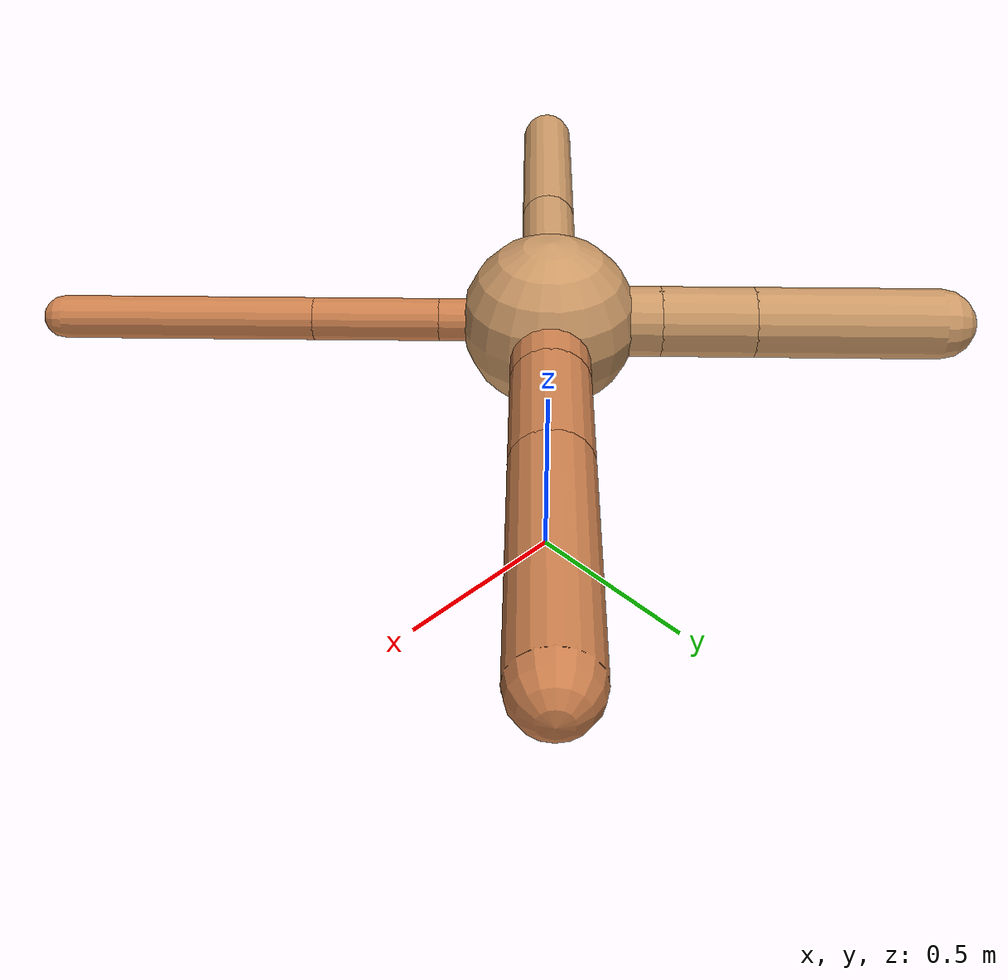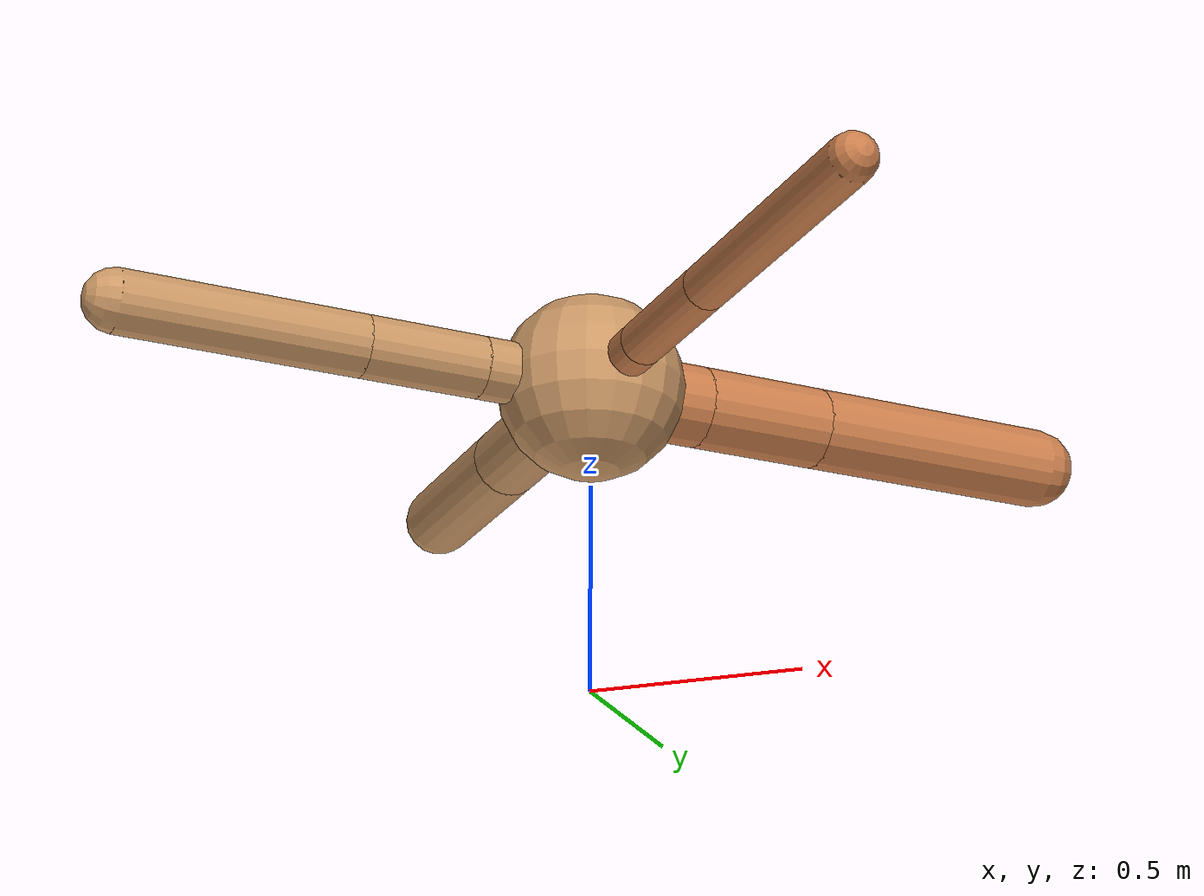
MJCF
<?xml version="1.0" ?>
<mujoco model="ant">

	<compiler angle="degree" coordinate="local" inertiafromgeom="true"/>

	<option integrator="RK4" timestep="0.01"/>

	<custom>

		<numeric data="0.0 0.0 0.55 1.0 0.0 0.0 0.0 0.0 1.0 0.0 -1.0 0.0 -1.0 0.0 1.0" name="init_qpos"/>

	</custom>

	<default>

		<joint armature="1" damping="1" limited="true"/>

		<geom conaffinity="0" condim="3" density="5.0" friction="1.5 0.1 0.1" margin="0.01" rgba="0.8 0.6 0.4 1"/>

	</default>

	<worldbody>

		<body name="torso" pos="0 0 0.75">

			<geom name="torso_geom" pos="0 0 0" size="0.2245289353081223" type="sphere"/>

			<!--joint armature="0" damping="0" limited="false" margin="0.01" name="root" pos="0 0 0" type="free"/-->

			<body name="front_left_leg" pos="0 0 0">

				<geom fromto="0 0 0 0.2 0.2 0" name="aux_1_geom" size="0.09897525524786853" type="capsule" rgba=".8 .5 .3 1"/>

				<body name="aux_1" pos="0.2 0.2 0">

					<joint axis="0 0 1" name="hip_1" pos="0.0 0.0 0.0" range="-40 40" type="hinge"/>

					<geom fromto="0 0 0 0.22607987336188123 0.22607987336188123 0" name="left_leg_geom" size="0.09897525524786853" type="capsule" rgba=".8 .5 .3 1"/>

					<body pos="0.22607987336188123 0.22607987336188123 0" name="front_left_foot">

						<joint axis="-1 1 0" name="ankle_1" pos="0.0 0.0 0.0" range="30 100" type="hinge"/>

						<geom fromto="0 0 0 0.45215974672376247 0.45215974672376247 0" name="left_ankle_geom" size="0.09897525524786853" type="capsule" rgba=".8 .5 .3 1"/>

					</body>

				</body>

			</body>

			<body name="front_right_leg" pos="0 0 0">

				<geom fromto="0 0 0 -0.2 0.2 0" name="aux_2_geom" size="0.09039505313154331" type="capsule"/>

				<body name="aux_2" pos="-0.2 0.2 0">

					<joint axis="0 0 1" name="hip_2" pos="0.0 0.0 0.0" range="-40 40" type="hinge"/>

					<geom fromto="0 0 0 -0.1682822708234999 0.1682822708234999 0" name="right_leg_geom" size="0.09039505313154331" type="capsule"/>

					<body pos="-0.1682822708234999 0.1682822708234999 0" name="front_right_foot">

						<joint axis="1 1 0" name="ankle_2" pos="0.0 0.0 0.0" range="-100 -30" type="hinge"/>

						<geom fromto="0 0 0 -0.3365645416469998 0.3365645416469998 0" name="right_ankle_geom" size="0.09039505313154331" type="capsule"/>

					</body>

				</body>

			</body>

			<body name="left_back_leg" pos="0 0 0">

				<geom fromto="0 0 0 -0.2 -0.2 0" name="aux_3_geom" size="0.07441648102592978" type="capsule"/>

				<body name="aux_3" pos="-0.2 -0.2 0">

					<joint axis="0 0 1" name="hip_3" pos="0.0 0.0 0.0" range="-40 40" type="hinge"/>

					<geom fromto="0 0 0 -0.204012375050413 -0.204012375050413 0" name="back_leg_geom" size="0.07441648102592978" type="capsule"/>

					<body pos="-0.204012375050413 -0.204012375050413 0" name="left_back_foot">

						<joint axis="-1 1 0" name="ankle_3" pos="0.0 0.0 0.0" range="-100 -30" type="hinge"/>

						<geom fromto="0 0 0 -0.408024750100826 -0.408024750100826 0" name="third_ankle_geom" size="0.07441648102592978" type="capsule"/>

					</body>

				</body>

			</body>

			<body name="right_back_leg" pos="0 0 0">

				<geom fromto="0 0 0 0.2 -0.2 0" name="aux_4_geom" size="0.054553577829355805" type="capsule" rgba=".8 .5 .3 1"/>

				<body name="aux_4" pos="0.2 -0.2 0">

					<joint axis="0 0 1" name="hip_4" pos="0.0 0.0 0.0" range="-40 40" type="hinge"/>

					<geom fromto="0 0 0 0.22705333236425473 -0.22705333236425473 0" name="rightback_leg_geom" size="0.054553577829355805" type="capsule" rgba=".8 .5 .3 1"/>

					<body pos="0.22705333236425473 -0.22705333236425473 0" name="right_back_foot">

						<joint axis="1 1 0" name="ankle_4" pos="0.0 0.0 0.0" range="30 100" type="hinge"/>

						<geom fromto="0 0 0 0.45410666472850947 -0.45410666472850947 0" name="fourth_ankle_geom" size="0.054553577829355805" type="capsule" rgba=".8 .5 .3 1"/>

					</body>

				</body>

			</body>

		</body>

	</worldbody>

	<actuator>

		<motor ctrllimited="true" ctrlrange="-1.0 1.0" joint="hip_4" gear="150"/>

		<motor ctrllimited="true" ctrlrange="-1.0 1.0" joint="ankle_4" gear="150"/>

		<motor ctrllimited="true" ctrlrange="-1.0 1.0" joint="hip_1" gear="150"/>

		<motor ctrllimited="true" ctrlrange="-1.0 1.0" joint="ankle_1" gear="150"/>

		<motor ctrllimited="true" ctrlrange="-1.0 1.0" joint="hip_2" gear="150"/>

		<motor ctrllimited="true" ctrlrange="-1.0 1.0" joint="ankle_2" gear="150"/>

		<motor ctrllimited="true" ctrlrange="-1.0 1.0" joint="hip_3" gear="150"/>

		<motor ctrllimited="true" ctrlrange="-1.0 1.0" joint="ankle_3" gear="150"/>

	</actuator>

</mujoco>
